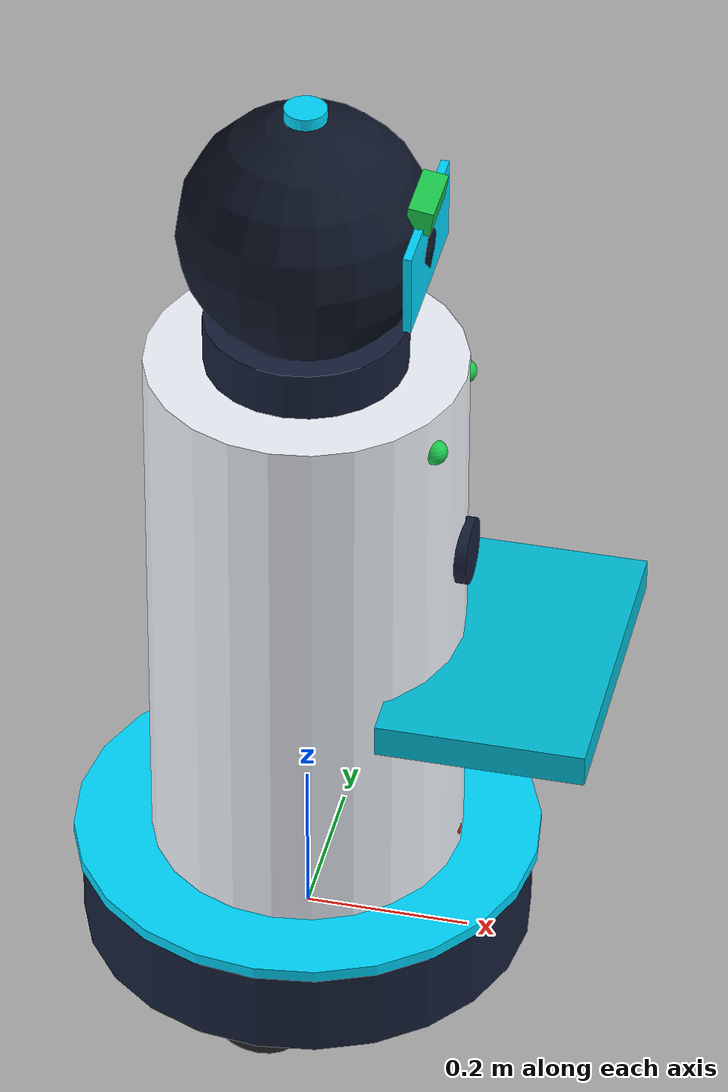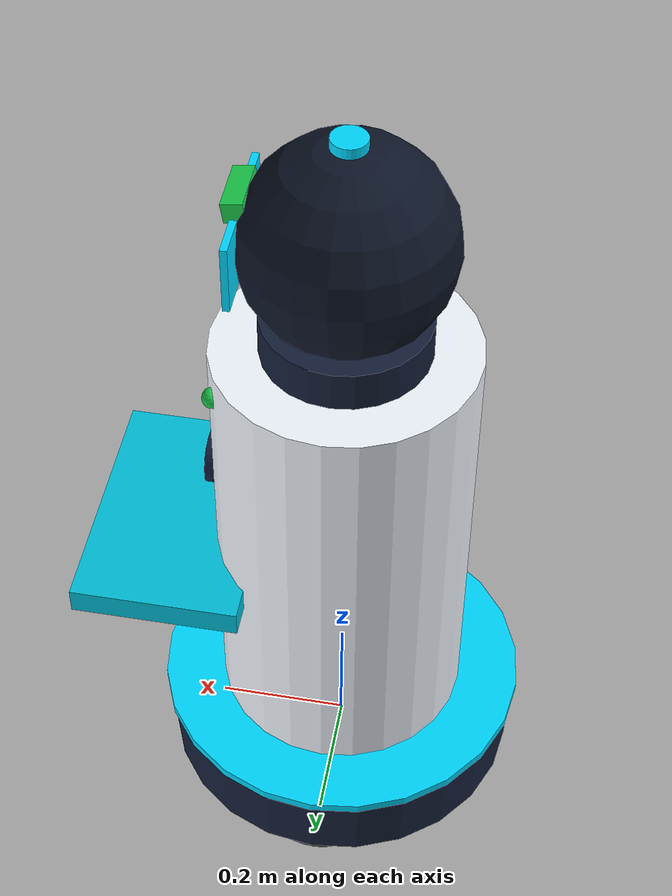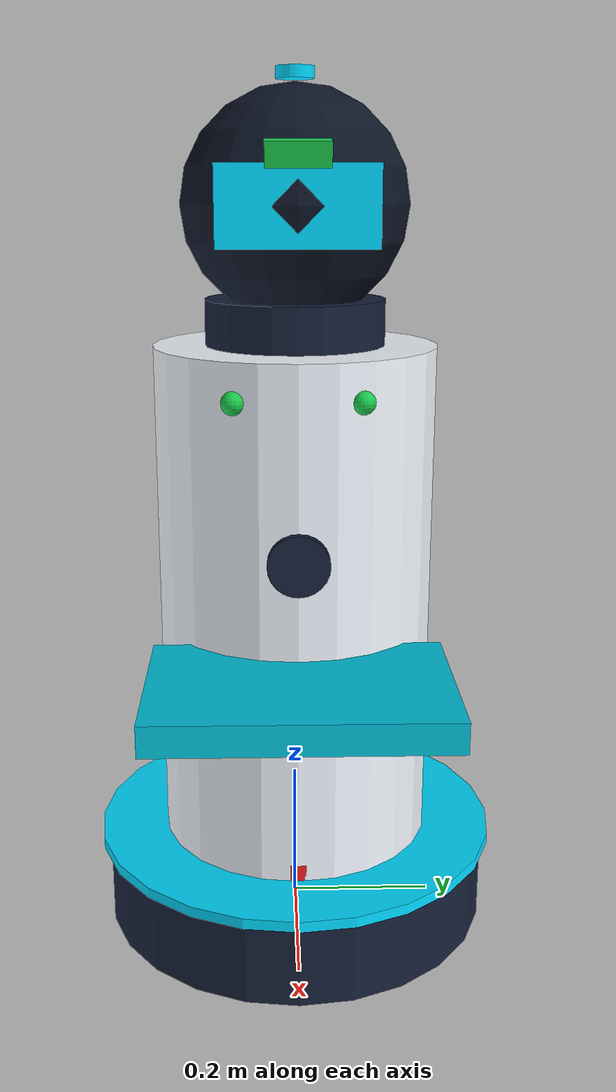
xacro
<?xml version="1.0"?>
<robot xmlns:xacro="http://www.ros.org/wiki/xacro" name="arogya_robot">

  <!-- Material Definitions                                                    -->
  <material name="base_navy">
    <color rgba="0.08 0.12 0.22 1.0"/>
  </material>
  <material name="torso_white">
    <color rgba="0.95 0.97 1.0 1.0"/>
  </material>
  <material name="head_dark">
    <color rgba="0.05 0.08 0.15 1.0"/>
  </material>
  <material name="tray_cyan">
    <color rgba="0.0 0.75 0.85 1.0"/>
  </material>
  <material name="accent_cyan">
    <color rgba="0.0 0.85 1.0 1.0"/>
  </material>
  <material name="wheel_rubber">
    <color rgba="0.15 0.15 0.15 1.0"/>
  </material>
  <material name="sensor_red">
    <color rgba="0.9 0.1 0.1 1.0"/>
  </material>
  <material name="sensor_green">
    <color rgba="0.1 0.8 0.3 1.0"/>
  </material>

  <!-- Base Footprint (Ground Plane Reference)                                 -->
  <link name="base_footprint"/>

  <joint name="base_footprint_joint" type="fixed">
    <parent link="base_footprint"/>
    <child link="base_link"/>
    <origin xyz="0 0 0.06" rpy="0 0 0"/>
  </joint>

  <!-- Mobile Base (Differential-Drive Chassis)                                -->
  <link name="base_link">
    <visual>
      <geometry>
        <cylinder radius="0.275" length="0.12"/>
      </geometry>
      <material name="base_navy"/>
    </visual>
    <collision>
      <geometry>
        <cylinder radius="0.275" length="0.12"/>
      </geometry>
    </collision>
    <inertial>
      <mass value="15.0"/>
      <inertia ixx="0.35" ixy="0" ixz="0" iyy="0.35" iyz="0" izz="0.57"/>
    </inertial>
  </link>

  <!-- Left Drive Wheel                                                        -->
  <link name="left_wheel">
    <visual>
      <geometry>
        <cylinder radius="0.06" length="0.03"/>
      </geometry>
      <material name="wheel_rubber"/>
    </visual>
    <collision>
      <geometry>
        <cylinder radius="0.06" length="0.03"/>
      </geometry>
    </collision>
    <inertial>
      <mass value="0.5"/>
      <inertia ixx="0.001" ixy="0" ixz="0" iyy="0.001" iyz="0" izz="0.001"/>
    </inertial>
  </link>

  <joint name="left_wheel_joint" type="continuous">
    <parent link="base_link"/>
    <child link="left_wheel"/>
    <origin xyz="0 0.25 -0.02" rpy="-1.5708 0 0"/>
    <axis xyz="0 0 1"/>
    <limit effort="10.0" velocity="5.0"/>
  </joint>

  <!-- Right Drive Wheel                                                       -->
  <link name="right_wheel">
    <visual>
      <geometry>
        <cylinder radius="0.06" length="0.03"/>
      </geometry>
      <material name="wheel_rubber"/>
    </visual>
    <collision>
      <geometry>
        <cylinder radius="0.06" length="0.03"/>
      </geometry>
    </collision>
    <inertial>
      <mass value="0.5"/>
      <inertia ixx="0.001" ixy="0" ixz="0" iyy="0.001" iyz="0" izz="0.001"/>
    </inertial>
  </link>

  <joint name="right_wheel_joint" type="continuous">
    <parent link="base_link"/>
    <child link="right_wheel"/>
    <origin xyz="0 -0.25 -0.02" rpy="-1.5708 0 0"/>
    <axis xyz="0 0 1"/>
    <limit effort="10.0" velocity="5.0"/>
  </joint>

  <!-- Rear Caster Wheel                                                       -->
  <link name="caster_wheel">
    <visual>
      <geometry>
        <sphere radius="0.03"/>
      </geometry>
      <material name="wheel_rubber"/>
    </visual>
    <collision>
      <geometry>
        <sphere radius="0.03"/>
      </geometry>
    </collision>
    <inertial>
      <mass value="0.2"/>
      <inertia ixx="0.0001" ixy="0" ixz="0" iyy="0.0001" iyz="0" izz="0.0001"/>
    </inertial>
  </link>

  <joint name="caster_joint" type="fixed">
    <parent link="base_link"/>
    <child link="caster_wheel"/>
    <origin xyz="-0.20 0 -0.03" rpy="0 0 0"/>
  </joint>

  <!-- Base Accent Ring (Cyan LED strip)                                       -->
  <link name="base_accent">
    <visual>
      <geometry>
        <cylinder radius="0.285" length="0.015"/>
      </geometry>
      <material name="accent_cyan"/>
    </visual>
    <inertial>
      <mass value="0.1"/>
      <inertia ixx="0.0001" ixy="0" ixz="0" iyy="0.0001" iyz="0" izz="0.0001"/>
    </inertial>
  </link>

  <joint name="base_accent_joint" type="fixed">
    <parent link="base_link"/>
    <child link="base_accent"/>
    <origin xyz="0 0 0.065" rpy="0 0 0"/>
  </joint>

  <!-- Torso Column (Medical White)                                            -->
  <link name="torso_link">
    <visual>
      <geometry>
        <cylinder radius="0.19" length="0.70"/>
      </geometry>
      <material name="torso_white"/>
    </visual>
    <collision>
      <geometry>
        <cylinder radius="0.19" length="0.70"/>
      </geometry>
    </collision>
    <inertial>
      <mass value="8.0"/>
      <inertia ixx="0.40" ixy="0" ixz="0" iyy="0.40" iyz="0" izz="0.15"/>
    </inertial>
  </link>

  <joint name="torso_joint" type="fixed">
    <parent link="base_link"/>
    <child link="torso_link"/>
    <origin xyz="0 0 0.42" rpy="0 0 0"/>
  </joint>

  <!-- Medicine Delivery Tray                                                  -->
  <link name="tray_link">
    <visual>
      <geometry>
        <box size="0.25 0.38 0.04"/>
      </geometry>
      <material name="tray_cyan"/>
    </visual>
    <collision>
      <geometry>
        <box size="0.25 0.38 0.04"/>
      </geometry>
    </collision>
    <inertial>
      <mass value="1.0"/>
      <inertia ixx="0.005" ixy="0" ixz="0" iyy="0.005" iyz="0" izz="0.005"/>
    </inertial>
  </link>

  <joint name="tray_joint" type="fixed">
    <parent link="torso_link"/>
    <child link="tray_link"/>
    <origin xyz="0.25 0 -0.05" rpy="0 0 0"/>
  </joint>

  <!-- Shoulder / Neck Transition Ring                                         -->
  <link name="neck_link">
    <visual>
      <geometry>
        <cylinder radius="0.12" length="0.06"/>
      </geometry>
      <material name="base_navy"/>
    </visual>
    <inertial>
      <mass value="0.5"/>
      <inertia ixx="0.001" ixy="0" ixz="0" iyy="0.001" iyz="0" izz="0.001"/>
    </inertial>
  </link>

  <joint name="neck_joint" type="fixed">
    <parent link="torso_link"/>
    <child link="neck_link"/>
    <origin xyz="0 0 0.38" rpy="0 0 0"/>
  </joint>

  <!-- Head (Display Visor)                                                    -->
  <link name="head_link">
    <visual>
      <geometry>
        <sphere radius="0.15"/>
      </geometry>
      <material name="head_dark"/>
    </visual>
    <collision>
      <geometry>
        <sphere radius="0.15"/>
      </geometry>
    </collision>
    <inertial>
      <mass value="2.0"/>
      <inertia ixx="0.01" ixy="0" ixz="0" iyy="0.01" iyz="0" izz="0.01"/>
    </inertial>
  </link>

  <joint name="head_joint" type="fixed">
    <parent link="neck_link"/>
    <child link="head_link"/>
    <origin xyz="0 0 0.15" rpy="0 0 0"/>
  </joint>

  <!-- Head Visor (Cyan face display) -->
  <link name="visor_link">
    <visual>
      <geometry>
        <box size="0.01 0.20 0.10"/>
      </geometry>
      <material name="accent_cyan"/>
    </visual>
    <inertial>
      <mass value="0.1"/>
      <inertia ixx="0.0001" ixy="0" ixz="0" iyy="0.0001" iyz="0" izz="0.0001"/>
    </inertial>
  </link>

  <joint name="visor_joint" type="fixed">
    <parent link="head_link"/>
    <child link="visor_link"/>
    <origin xyz="0.14 0 0.0" rpy="0 0 0"/>
  </joint>

  <!-- LiDAR Sensor (Top of Base)                                              -->
  <link name="base_scan">
    <visual>
      <geometry>
        <cylinder radius="0.04" length="0.03"/>
      </geometry>
      <material name="sensor_red"/>
    </visual>
    <inertial>
      <mass value="0.2"/>
      <inertia ixx="0.0001" ixy="0" ixz="0" iyy="0.0001" iyz="0" izz="0.0001"/>
    </inertial>
  </link>

  <joint name="lidar_joint" type="fixed">
    <parent link="base_link"/>
    <child link="base_scan"/>
    <origin xyz="0.15 0 0.08" rpy="0 0 0"/>
  </joint>

  <!-- RGB-D Camera (Head-Mounted)                                             -->
  <link name="camera_link">
    <visual>
      <geometry>
        <box size="0.03 0.08 0.03"/>
      </geometry>
      <material name="sensor_green"/>
    </visual>
    <inertial>
      <mass value="0.15"/>
      <inertia ixx="0.0001" ixy="0" ixz="0" iyy="0.0001" iyz="0" izz="0.0001"/>
    </inertial>
  </link>

  <joint name="camera_joint" type="fixed">
    <parent link="head_link"/>
    <child link="camera_link"/>
    <origin xyz="0.14 0 0.06" rpy="0 0.15 0"/>
  </joint>

  <!-- Microphone Array (Head Top)                                             -->
  <link name="mic_link">
    <visual>
      <geometry>
        <cylinder radius="0.025" length="0.015"/>
      </geometry>
      <material name="accent_cyan"/>
    </visual>
    <inertial>
      <mass value="0.05"/>
      <inertia ixx="0.00001" ixy="0" ixz="0" iyy="0.00001" iyz="0" izz="0.00001"/>
    </inertial>
  </link>

  <joint name="mic_joint" type="fixed">
    <parent link="head_link"/>
    <child link="mic_link"/>
    <origin xyz="0 0 0.16" rpy="0 0 0"/>
  </joint>

  <!-- Speaker (Front Torso)                                                   -->
  <link name="speaker_link">
    <visual>
      <geometry>
        <cylinder radius="0.04" length="0.02"/>
      </geometry>
      <material name="base_navy"/>
    </visual>
    <inertial>
      <mass value="0.1"/>
      <inertia ixx="0.0001" ixy="0" ixz="0" iyy="0.0001" iyz="0" izz="0.0001"/>
    </inertial>
  </link>

  <joint name="speaker_joint" type="fixed">
    <parent link="torso_link"/>
    <child link="speaker_link"/>
    <origin xyz="0.19 0 0.10" rpy="0 1.5708 0"/>
  </joint>

  <!-- Status LED Indicators (Left and Right on torso)                         -->
  <link name="led_left">
    <visual>
      <geometry>
        <sphere radius="0.015"/>
      </geometry>
      <material name="sensor_green"/>
    </visual>
    <inertial>
      <mass value="0.01"/>
      <inertia ixx="0.000001" ixy="0" ixz="0" iyy="0.000001" iyz="0" izz="0.000001"/>
    </inertial>
  </link>

  <joint name="led_left_joint" type="fixed">
    <parent link="torso_link"/>
    <child link="led_left"/>
    <origin xyz="0.17 0.08 0.30" rpy="0 0 0"/>
  </joint>

  <link name="led_right">
    <visual>
      <geometry>
        <sphere radius="0.015"/>
      </geometry>
      <material name="sensor_green"/>
    </visual>
    <inertial>
      <mass value="0.01"/>
      <inertia ixx="0.000001" ixy="0" ixz="0" iyy="0.000001" iyz="0" izz="0.000001"/>
    </inertial>
  </link>

  <joint name="led_right_joint" type="fixed">
    <parent link="torso_link"/>
    <child link="led_right"/>
    <origin xyz="0.17 -0.08 0.30" rpy="0 0 0"/>
  </joint>

</robot>
